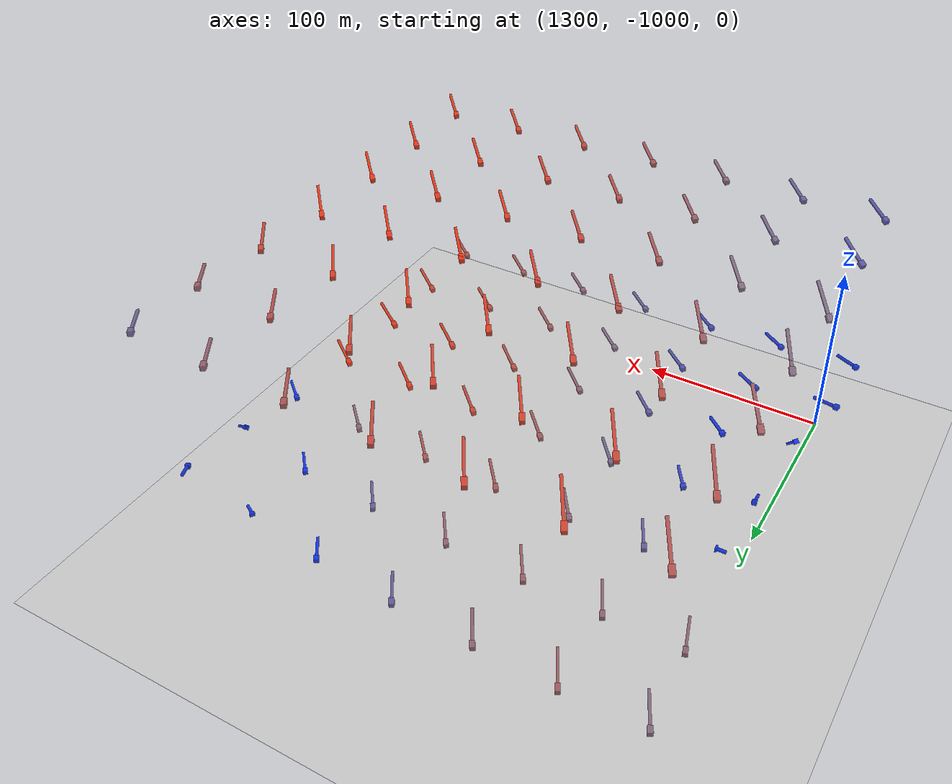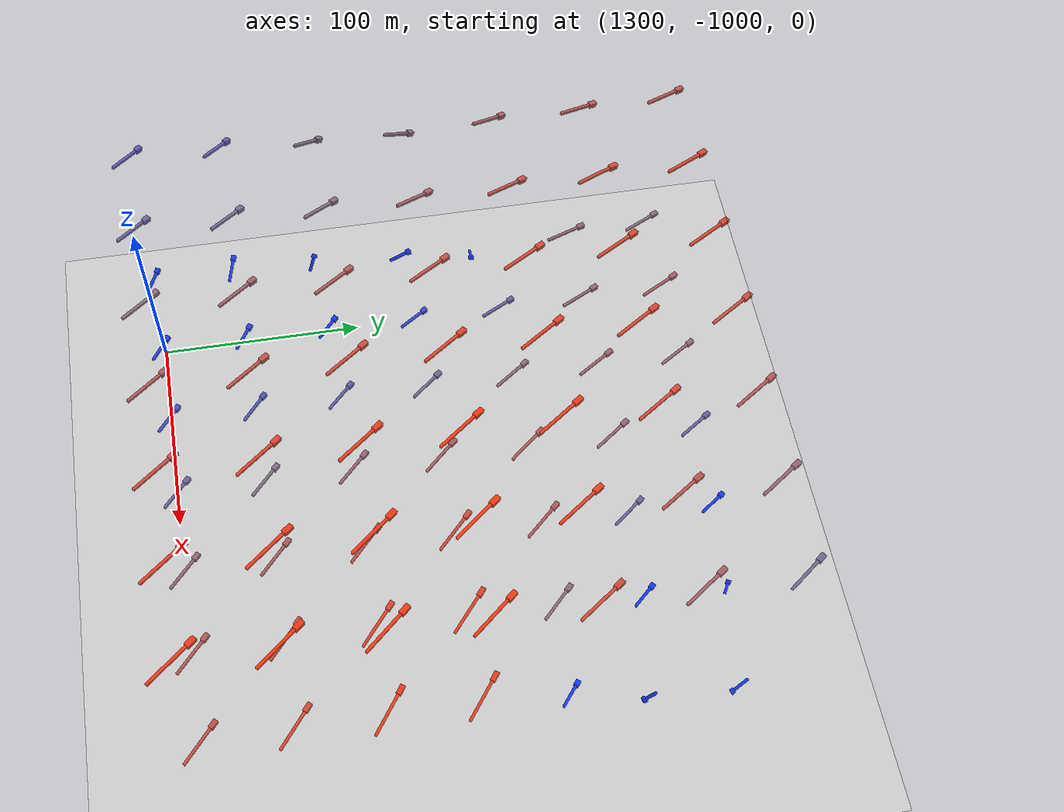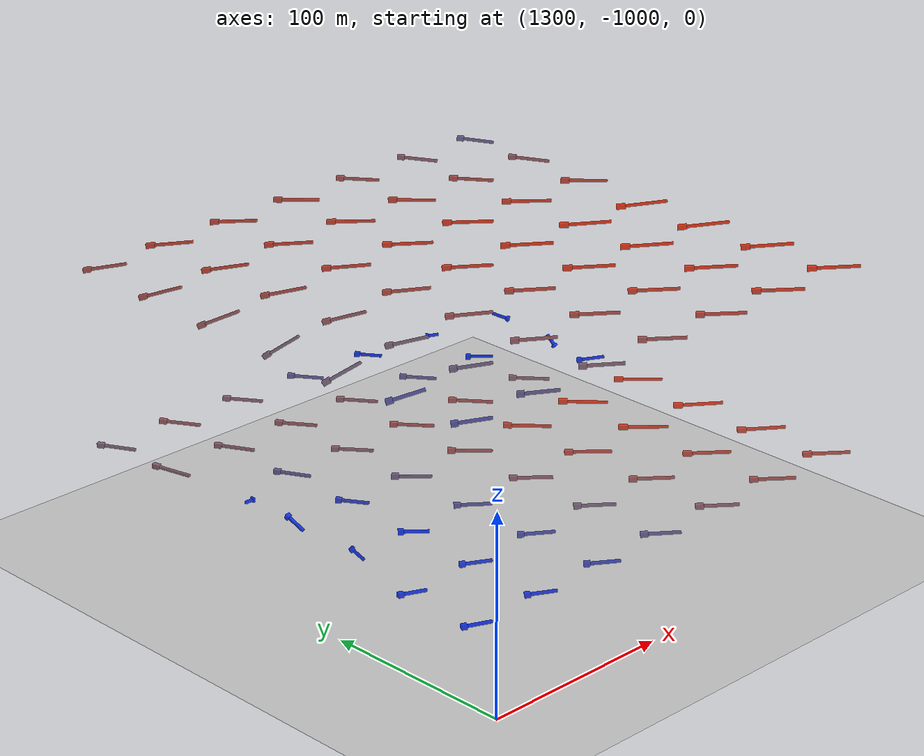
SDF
<sdf version="1.6">
 <world name="guangzhou_wind">
  <physics type="ode">
   <max_step_size>0.004</max_step_size>
   <real_time_update_rate>250</real_time_update_rate>
  </physics>
  <include><uri>model://sun</uri></include>
  <include><uri>model://ground_plane</uri></include>
  <include><uri>model://wind_arrows_hotspot</uri></include>
 </world>
</sdf>
